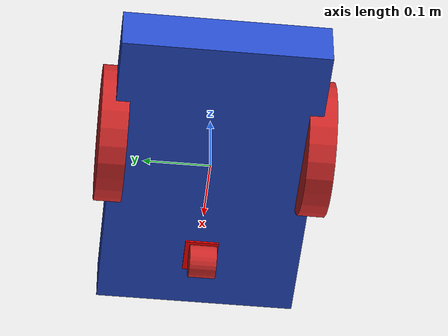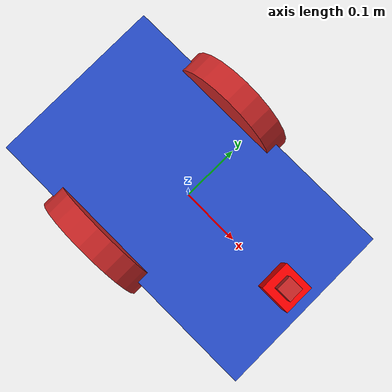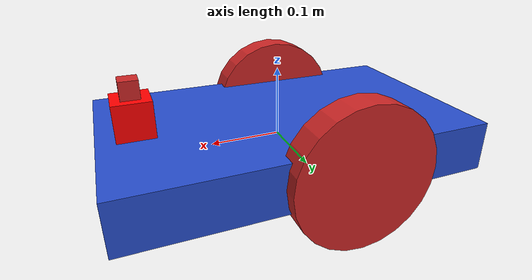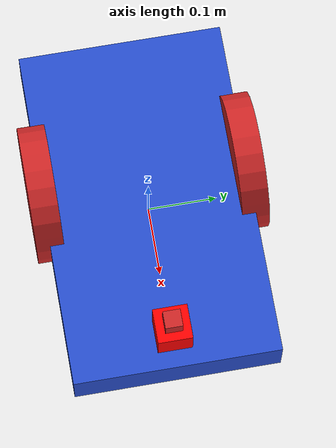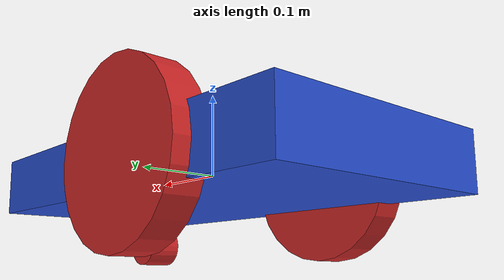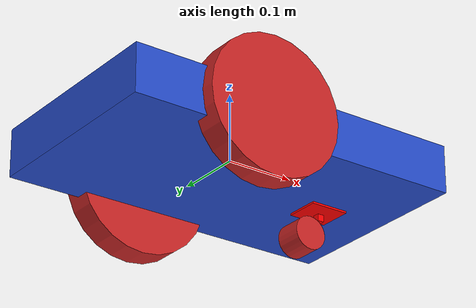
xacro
<?xml version="1.0"?>
<robot xmlns:xacro="http://www.ros.org/wiki/xacro" name="robot_xacro">
    <xacro:include filename="$(find exp_assignment3)/urdf/robot.gazebo" />

    <xacro:property name="length_wheel" value="0.04" />
    <xacro:property name="radius_wheel" value="0.1" />

    <xacro:macro name="default_inertial" params="mass">
        <inertial>
            <mass value="${mass}" />
            <origin rpy="0 1.5707 1.5707" xyz="0 0 0" />
            <inertia ixx="0.000526666666667" ixy="0" ixz="0" iyy="0.000526666666667" iyz="0" izz="0.001" />
        </inertial>
    </xacro:macro>

    <xacro:macro name="wheel_geometry">
        <geometry>
            <cylinder length="${length_wheel}" radius="${radius_wheel}" />
        </geometry>
    </xacro:macro>

    <link name="link_chassis">
        <!-- pose and inertial -->
        <pose>0 0 0.1 0 0 0</pose>
        <inertial>
            <mass value="20" />
            <origin rpy="0 0 0" xyz="0 0 0.1" />
            <inertia ixx="0.0395416666667" ixy="0" ixz="0" iyy="0.106208333333" iyz="0" izz="0.106208333333" />
        </inertial>
        <!-- body -->
        <collision name="collision_chassis">
            <geometry>
                <box size="0.5 0.3 0.07" />
            </geometry>
        </collision>
        <visual>
            <origin rpy="0 0 0" xyz="0 0 0" />
            <geometry>
                <box size="0.5 0.3 0.07" />
            </geometry>
            <material name="blue" />
        </visual>
    </link>

    <link name="link_castor_mount">
        <collision>
            <origin rpy="0 0 0" xyz="0 0 0" />
            <geometry>
                <box size="0.057 0.10 0.0057"/>
            </geometry>
        </collision>
        <visual>
            <origin xyz="0 0 0" rpy="0 0 0"/>
            <geometry>
                <box size="0.057 0.05 0.0057"/>
            </geometry>
            <material name="grey">
                <color rgba="1 0 0 1"/>
            </material>
        </visual>
        <inertial>
            <origin rpy="0 0 0" xyz="0 0 0" />
            <mass value="0.25"/>
            <inertia
                ixx="${0.25*(0.05*0.05+0.0057*0.0057)/12}"
                ixy="0"
                ixz="0"
                iyy="${0.25*(0.057*0.057+0.0057*0.0057)/12}"
                iyz="0"
                izz="${0.25*(0.057*0.057+0.0057*0.0057)/12}"/>
        </inertial>
    </link>

    <joint name="joint_castor_mount" type="fixed">
        <origin xyz="0.15 0 -0.035" rpy="0 0 0"/>
        <parent link="link_chassis"/>
        <child link="link_castor_mount"/>
    </joint>

    <link name="link_castor_dummy">
        <collision>
            <origin rpy="0 0 0" xyz="0 0 0" />
            <geometry>
                <box size="0.01 0.01 0.01"/>
            </geometry>
        </collision>
        <visual>
            <origin xyz="0 0 0" rpy="0 0 0"/>
            <geometry>
                <box size="0.01 0.01 0.01"/>
            </geometry>
            <material name="grey">
                <color rgba="1 0 0 1"/>
            </material>
        </visual>
        <inertial>
            <origin rpy="0 0 0" xyz="0 0 0" />
            <mass value="0.25"/>
            <inertia
                ixx="${0.25*(0.01*0.01+0.01*0.01)/12}"
                ixy="0"
                ixz="0"
                iyy="${0.25*(0.01*0.01+0.01*0.01)/12}"
                iyz="0"
                izz="${0.25*(0.01*0.01+0.01*0.01)/12}"/>
        </inertial>
    </link>

    <joint name="joint_castor_dummy" type="continuous">
        <origin rpy="0 0 0" xyz="0 0 -0.01" />
        <child link="link_castor_dummy" />
        <parent link="link_castor_mount" />
        <axis rpy="0 0 0" xyz="0 0 1" />
        <limit effort="10000" velocity="1000" />
        <joint_properties damping="1.0" friction="1.0" />
    </joint>

    <transmission name="castor_dummy_transm">
        <type>transmission_interface/SimpleTransmission</type>
        <joint name="joint_castor_dummy">
            <hardwareInterface>hardware_interface/EffortJointInterface</hardwareInterface>
        </joint>
        <actuator name="motor2">
            <hardwareInterface>hardware_interface/EffortJointInterface</hardwareInterface>
            <mechanicalInterface>1</mechanicalInterface>
        </actuator>
    </transmission>

    <link name="link_castor_wheel">
        <collision>
            <origin rpy="0 1.5707 1.5707" xyz="0 0 0" />
            <geometry>
                <cylinder length="0.04" radius="0.024"/>
            </geometry>
        </collision>
        <visual>
            <origin rpy="0 1.5707 1.5707" xyz="0 0 0" />
            <geometry>
                <cylinder length="0.04" radius="0.024"/>
            </geometry>
            <material name="red"/>
        </visual>
        <xacro:default_inertial mass="0.1" />
    </link>

    <joint name="joint_castor_wheel" type="continuous">
        <axis rpy="0 0 0" xyz="0 1 0"/>
        <parent link="link_castor_dummy"/>
        <child link="link_castor_wheel"/>
        <origin rpy="0 0 0" xyz="-0.03 0 -0.035" />
        <joint_properties damping="1.0" friction="1.0" />
    </joint>

    <!-- transmission -->

    <transmission name="castor_wheel_transm">
        <type>transmission_interface/SimpleTransmission</type>
        <joint name="joint_castor_wheel">
            <hardwareInterface>hardware_interface/EffortJointInterface</hardwareInterface>
        </joint>
        <actuator name="motor1">
            <hardwareInterface>hardware_interface/EffortJointInterface</hardwareInterface>
            <mechanicalInterface>1</mechanicalInterface>
        </actuator>
    </transmission>

    <link name="link_right_wheel">
        <xacro:default_inertial mass="0.2" />
        <collision name="link_right_wheel_collision">
            <origin rpy="0 1.5707 1.5707" xyz="0 0 0" />
            <xacro:wheel_geometry />
        </collision>
        <visual name="link_right_wheel_visual">
            <origin rpy="0 1.5707 1.5707" xyz="0 0 0" />
            <xacro:wheel_geometry />
            <material name="red" />
        </visual>
    </link>

    <link name="link_left_wheel">
        <xacro:default_inertial mass="0.2" />
        <collision name="link_left_wheel_collision">
            <origin rpy="0 1.5707 1.5707" xyz="0 0 0" />
            <xacro:wheel_geometry />
        </collision>
        <visual name="link_left_wheel_visual">
            <origin rpy="0 1.5707 1.5707" xyz="0 0 0" />
            <xacro:wheel_geometry />
            <material name="red" />
        </visual>
    </link>

    <joint name="joint_right_wheel" type="continuous">
        <origin rpy="0 0 0" xyz="-0.05 0.15 0" />
        <child link="link_right_wheel" />
        <parent link="link_chassis" />
        <axis rpy="0 0 0" xyz="0 1 0" />
        <joint_properties damping="1.0" friction="1.0" />
    </joint>

    <joint name="joint_left_wheel" type="continuous">
        <origin rpy="0 0 0" xyz="-0.05 -0.15 0" />
        <child link="link_left_wheel" />
        <parent link="link_chassis" />
        <axis rpy="0 0 0" xyz="0 1 0" />
        <joint_properties damping="1.0" friction="1.0" />
    </joint>

    <link name="camera_link">
        <collision>
            <origin xyz="0 0 0.025" rpy="0 0 0"/>
            <geometry>
                <box size="0.05 0.05 0.05"/>
            </geometry>
        </collision>
        <visual>
            <origin xyz="0 0 0.025" rpy="0 0 0"/>
            <geometry>
                <box size="0.05 0.05 0.05"/>
            </geometry>
            <material name="orange">
                <color rgba="1 0 0 1"/>
            </material>
        </visual>
    </link>

    <joint name="camera_joint" type="fixed">
        <axis xyz="0 1 0" />
        <origin xyz="0.2 0 0.035" rpy="0 0 0"/>
        <parent link="link_chassis"/>
        <child link="camera_link"/>
    </joint>

    <link name="hokuyo_link">
        <collision>
            <origin xyz="0 0 0.00125" rpy="0 0 0"/>
            <geometry>
                <box size="0.025 0.025 0.025"/>
            </geometry>
        </collision>
        <visual>
            <origin xyz="0 0 0.0125" rpy="0 0 0"/>
            <geometry>
                <box size="0.025 0.025 0.025"/>
            </geometry>
            <material name="red"/>
        </visual>
    </link>

    <joint name="hokuyo_joint" type="fixed">
        <axis xyz="0 1 0" />
        <origin xyz="0 0 0.05" rpy="0 0 0"/>
        <parent link="camera_link"/>
        <child link="hokuyo_link"/>
    </joint>

</robot>
